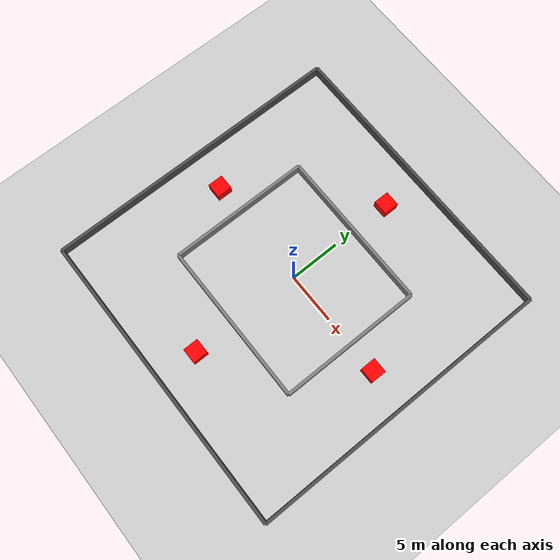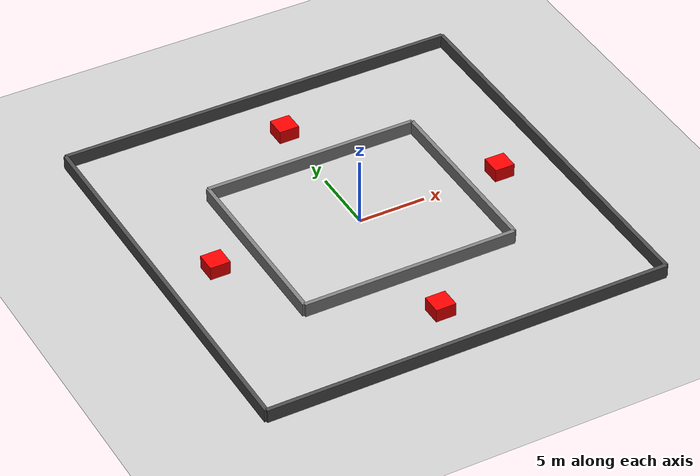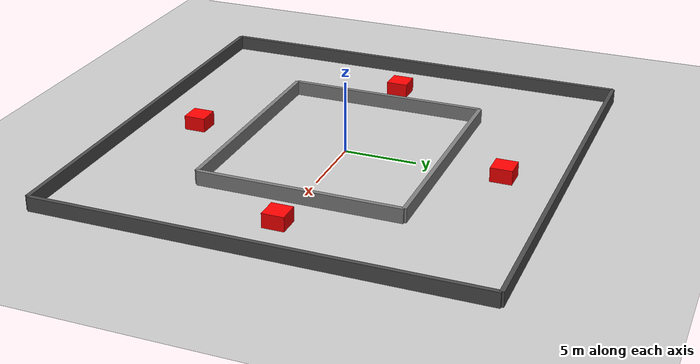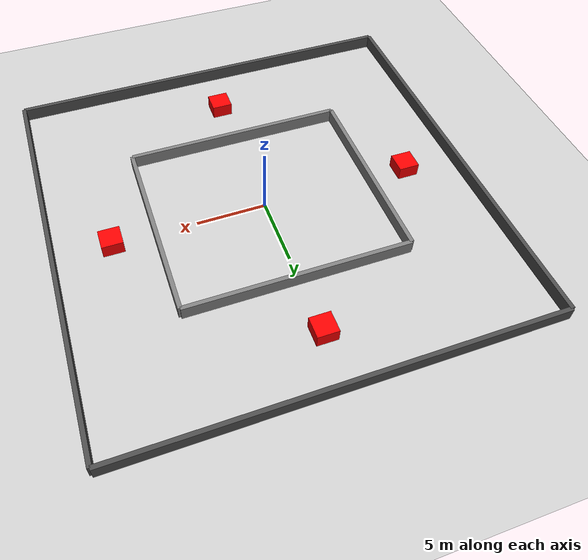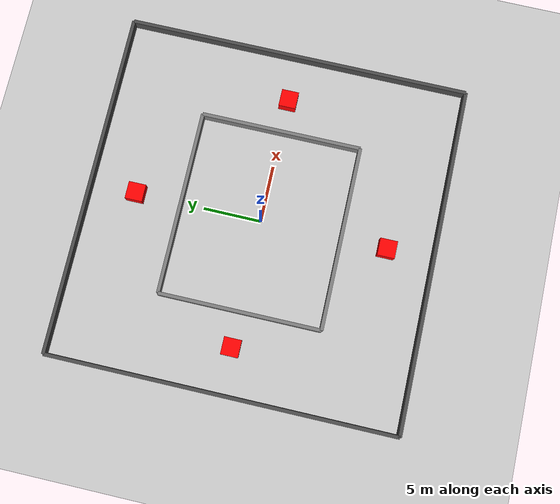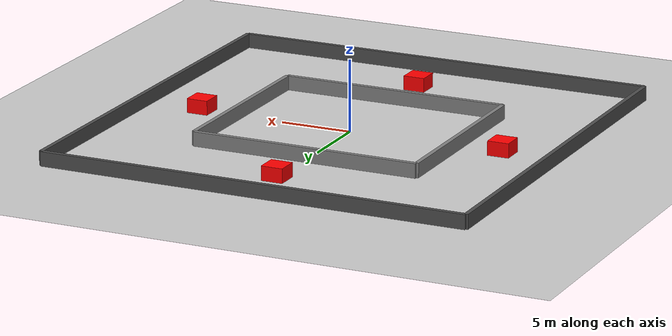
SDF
<?xml version="1.0" ?>
<sdf version="1.6">
  <world name="teknofest_parkur">

    <include><uri>model://sun</uri></include>
    <include><uri>model://ground_plane</uri></include>

    <!-- Dış çevre duvarı -->
    <model name="dis_kuzey"><static>true</static><pose>0 15 0.5 0 0 0</pose>
      <link name="link"><collision name="c"><geometry><box><size>30 0.3 1</size></box></geometry></collision>
      <visual name="v"><geometry><box><size>30 0.3 1</size></box></geometry><material><ambient>0.3 0.3 0.3 1</ambient></material></visual></link></model>

    <model name="dis_guney"><static>true</static><pose>0 -15 0.5 0 0 0</pose>
      <link name="link"><collision name="c"><geometry><box><size>30 0.3 1</size></box></geometry></collision>
      <visual name="v"><geometry><box><size>30 0.3 1</size></box></geometry><material><ambient>0.3 0.3 0.3 1</ambient></material></visual></link></model>

    <model name="dis_dogu"><static>true</static><pose>15 0 0.5 0 0 0</pose>
      <link name="link"><collision name="c"><geometry><box><size>0.3 30 1</size></box></geometry></collision>
      <visual name="v"><geometry><box><size>0.3 30 1</size></box></geometry><material><ambient>0.3 0.3 0.3 1</ambient></material></visual></link></model>

    <model name="dis_bati"><static>true</static><pose>-15 0 0.5 0 0 0</pose>
      <link name="link"><collision name="c"><geometry><box><size>0.3 30 1</size></box></geometry></collision>
      <visual name="v"><geometry><box><size>0.3 30 1</size></box></geometry><material><ambient>0.3 0.3 0.3 1</ambient></material></visual></link></model>

    <!-- İç ada duvarları (döngü oluşturmak için) -->
    <model name="ic_kuzey"><static>true</static><pose>0 7 0.5 0 0 0</pose>
      <link name="link"><collision name="c"><geometry><box><size>16 0.3 1</size></box></geometry></collision>
      <visual name="v"><geometry><box><size>16 0.3 1</size></box></geometry><material><ambient>0.5 0.5 0.5 1</ambient></material></visual></link></model>

    <model name="ic_guney"><static>true</static><pose>0 -7 0.5 0 0 0</pose>
      <link name="link"><collision name="c"><geometry><box><size>16 0.3 1</size></box></geometry></collision>
      <visual name="v"><geometry><box><size>16 0.3 1</size></box></geometry><material><ambient>0.5 0.5 0.5 1</ambient></material></visual></link></model>

    <model name="ic_dogu"><static>true</static><pose>8 0 0.5 0 0 0</pose>
      <link name="link"><collision name="c"><geometry><box><size>0.3 14 1</size></box></geometry></collision>
      <visual name="v"><geometry><box><size>0.3 14 1</size></box></geometry><material><ambient>0.5 0.5 0.5 1</ambient></material></visual></link></model>

    <model name="ic_bati"><static>true</static><pose>-8 0 0.5 0 0 0</pose>
      <link name="link"><collision name="c"><geometry><box><size>0.3 14 1</size></box></geometry></collision>
      <visual name="v"><geometry><box><size>0.3 14 1</size></box></geometry><material><ambient>0.5 0.5 0.5 1</ambient></material></visual></link></model>

    <!-- Statik engeller — yol üzerinde -->
    <model name="engel_1"><static>true</static><pose>0 11 0.5 0 0 0</pose>
      <link name="link"><collision name="c"><geometry><box><size>1.5 1.5 1</size></box></geometry></collision>
      <visual name="v"><geometry><box><size>1.5 1.5 1</size></box></geometry><material><ambient>1 0 0 1</ambient></material></visual></link></model>

    <model name="engel_2"><static>true</static><pose>0 -11 0.5 0 0 0</pose>
      <link name="link"><collision name="c"><geometry><box><size>1.5 1.5 1</size></box></geometry></collision>
      <visual name="v"><geometry><box><size>1.5 1.5 1</size></box></geometry><material><ambient>1 0 0 1</ambient></material></visual></link></model>

    <model name="engel_3"><static>true</static><pose>11 0 0.5 0 0 0</pose>
      <link name="link"><collision name="c"><geometry><box><size>1.5 1.5 1</size></box></geometry></collision>
      <visual name="v"><geometry><box><size>1.5 1.5 1</size></box></geometry><material><ambient>1 0 0 1</ambient></material></visual></link></model>

    <model name="engel_4"><static>true</static><pose>-11 0 0.5 0 0 0</pose>
      <link name="link"><collision name="c"><geometry><box><size>1.5 1.5 1</size></box></geometry></collision>
      <visual name="v"><geometry><box><size>1.5 1.5 1</size></box></geometry><material><ambient>1 0 0 1</ambient></material></visual></link></model>

  </world>
</sdf>
